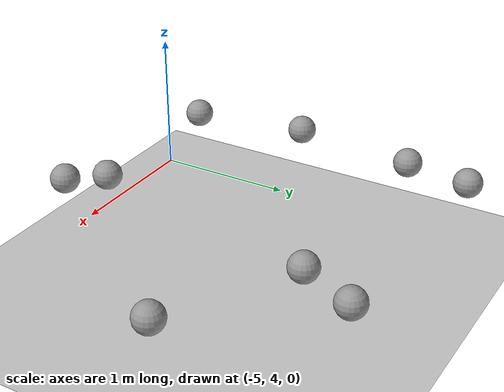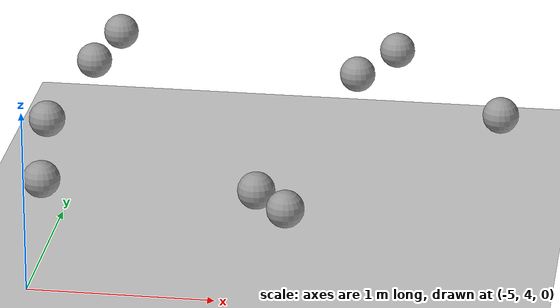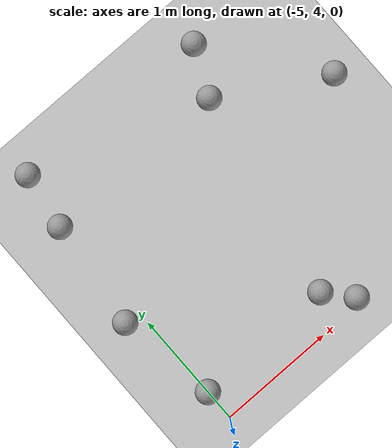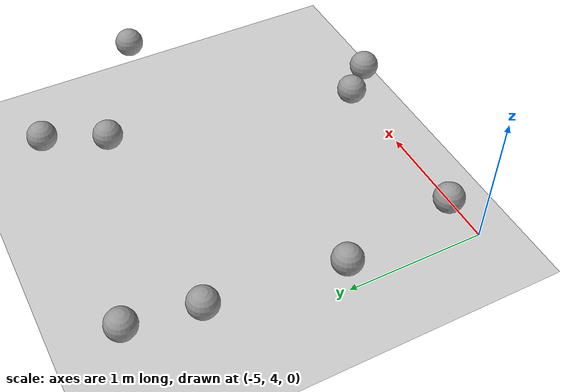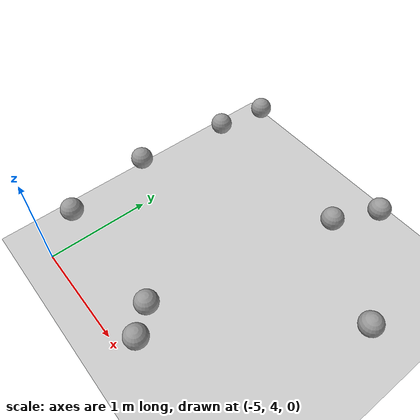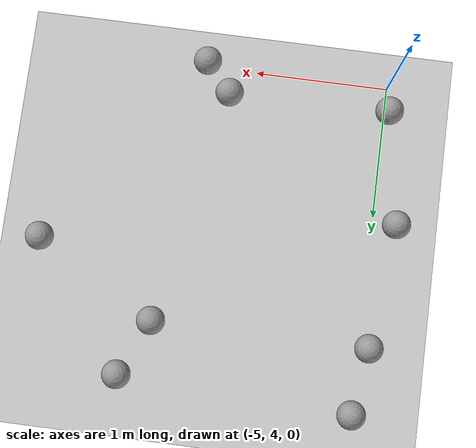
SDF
<sdf version="1.7">
 <world name="default">
  <model name="ground_plane">
   <static>1</static>
   <link name="link">
    <collision name="collision">
     <geometry><plane><normal>0 0 1</normal><size>100 100</size></plane></geometry>
     <surface>
      <contact><collide_bitmask>65535</collide_bitmask></contact>
      <friction><ode><mu>100</mu><mu2>50</mu2></ode></friction>
     </surface>
    </collision>
    <visual name="visual">
     <cast_shadows>0</cast_shadows>
     <geometry><plane><normal>0 0 1</normal><size>100 100</size></plane></geometry>
     <material>
      <script><uri>file://media/materials/scripts/gazebo.material</uri><name>Gazebo/Grey</name></script>
     </material>
    </visual>
   </link>
  </model>
  <model name="0.1unit_sphere">
   <link name="link">
    <inertial>
     <mass>1</mass>
     <inertia><ixx>0.1</ixx><ixy>0</ixy><ixz>0</ixz><iyy>0.1</iyy><iyz>0</iyz><izz>0.1</izz></inertia>
    </inertial>
    <visual name="visual">
     <geometry><sphere><radius>0.1</radius></sphere></geometry>
     <material>
      <script><name>Gazebo/Grey</name><uri>file://media/materials/scripts/gazebo.material</uri></script>
      <shader type="pixel"><normal_map>__default__</normal_map></shader>
      <ambient>0.3 0.3 0.3 1</ambient>
      <diffuse>0.7 0.7 0.7 1</diffuse>
      <specular>0.01 0.01 0.01 1</specular>
      <emissive>0 0 0 1</emissive>
     </material>
    </visual>
    <collision name="collision">
     <geometry><sphere><radius>0.1</radius></sphere></geometry>
     <surface>
      <friction>
       <ode><mu>1</mu><mu2>1</mu2><fdir1>0 0 0</fdir1><slip1>0</slip1><slip2>0</slip2></ode>
       <torsional>
        <coefficient>1</coefficient>
        <patch_radius>0</patch_radius>
        <surface_radius>0</surface_radius>
        <use_patch_radius>1</use_patch_radius>
        <ode><slip>0</slip></ode>
       </torsional>
      </friction>
      <bounce><restitution_coefficient>0</restitution_coefficient><threshold>1e+06</threshold></bounce>
      <contact>
       <collide_without_contact>0</collide_without_contact>
       <collide_without_contact_bitmask>1</collide_without_contact_bitmask>
       <collide_bitmask>1</collide_bitmask>
       <ode>
        <soft_cfm>0</soft_cfm>
        <soft_erp>0.2</soft_erp>
        <kp>1e+13</kp>
        <kd>1</kd>
        <max_vel>0.01</max_vel>
        <min_depth>0</min_depth>
       </ode>
       <bullet>
        <split_impulse>1</split_impulse>
        <split_impulse_penetration_threshold>-0.01</split_impulse_penetration_threshold>
        <soft_cfm>0</soft_cfm>
        <soft_erp>0.2</soft_erp>
        <kp>1e+13</kp>
        <kd>1</kd>
       </bullet>
      </contact>
     </surface>
    </collision>
   </link>
   <static>0</static>
   <pose>-5.10007 5.12136 0.5 0 -0 0</pose>
  </model>
  <model name="0.1unit_sphere_clone_0">
   <link name="link">
    <inertial>
     <mass>1</mass>
     <inertia><ixx>0.1</ixx><ixy>0</ixy><ixz>0</ixz><iyy>0.1</iyy><iyz>0</iyz><izz>0.1</izz></inertia>
    </inertial>
    <visual name="visual">
     <geometry><sphere><radius>0.1</radius></sphere></geometry>
     <material>
      <script><name>Gazebo/Grey</name><uri>file://media/materials/scripts/gazebo.material</uri></script>
      <shader type="pixel"><normal_map>__default__</normal_map></shader>
      <ambient>0.3 0.3 0.3 1</ambient>
      <diffuse>0.7 0.7 0.7 1</diffuse>
      <specular>0.01 0.01 0.01 1</specular>
      <emissive>0 0 0 1</emissive>
     </material>
    </visual>
    <collision name="collision">
     <geometry><sphere><radius>0.1</radius></sphere></geometry>
     <surface>
      <friction>
       <ode><mu>1</mu><mu2>1</mu2><fdir1>0 0 0</fdir1><slip1>0</slip1><slip2>0</slip2></ode>
       <torsional>
        <coefficient>1</coefficient>
        <patch_radius>0</patch_radius>
        <surface_radius>0</surface_radius>
        <use_patch_radius>1</use_patch_radius>
        <ode><slip>0</slip></ode>
       </torsional>
      </friction>
      <bounce><restitution_coefficient>0</restitution_coefficient><threshold>1e+06</threshold></bounce>
      <contact>
       <collide_without_contact>0</collide_without_contact>
       <collide_without_contact_bitmask>1</collide_without_contact_bitmask>
       <collide_bitmask>1</collide_bitmask>
       <ode>
        <soft_cfm>0</soft_cfm>
        <soft_erp>0.2</soft_erp>
        <kp>1e+13</kp>
        <kd>1</kd>
        <max_vel>0.01</max_vel>
        <min_depth>0</min_depth>
       </ode>
       <bullet>
        <split_impulse>1</split_impulse>
        <split_impulse_penetration_threshold>-0.01</split_impulse_penetration_threshold>
        <soft_cfm>0</soft_cfm>
        <soft_erp>0.2</soft_erp>
        <kp>1e+13</kp>
        <kd>1</kd>
       </bullet>
      </contact>
     </surface>
    </collision>
   </link>
   <static>0</static>
   <pose>-2.64217 5.51446 0.5 0 -0 0</pose>
  </model>
  <model name="0.1unit_sphere_clone_2">
   <link name="link">
    <inertial>
     <mass>1</mass>
     <inertia><ixx>0.1</ixx><ixy>0</ixy><ixz>0</ixz><iyy>0.1</iyy><iyz>0</iyz><izz>0.1</izz></inertia>
    </inertial>
    <visual name="visual">
     <geometry><sphere><radius>0.1</radius></sphere></geometry>
     <material>
      <script><name>Gazebo/Grey</name><uri>file://media/materials/scripts/gazebo.material</uri></script>
      <shader type="pixel"><normal_map>__default__</normal_map></shader>
      <ambient>0.3 0.3 0.3 1</ambient>
      <diffuse>0.7 0.7 0.7 1</diffuse>
      <specular>0.01 0.01 0.01 1</specular>
      <emissive>0 0 0 1</emissive>
     </material>
    </visual>
    <collision name="collision">
     <geometry><sphere><radius>0.1</radius></sphere></geometry>
     <surface>
      <friction>
       <ode><mu>1</mu><mu2>1</mu2><fdir1>0 0 0</fdir1><slip1>0</slip1><slip2>0</slip2></ode>
       <torsional>
        <coefficient>1</coefficient>
        <patch_radius>0</patch_radius>
        <surface_radius>0</surface_radius>
        <use_patch_radius>1</use_patch_radius>
        <ode><slip>0</slip></ode>
       </torsional>
      </friction>
      <bounce><restitution_coefficient>0</restitution_coefficient><threshold>1e+06</threshold></bounce>
      <contact>
       <collide_without_contact>0</collide_without_contact>
       <collide_without_contact_bitmask>1</collide_without_contact_bitmask>
       <collide_bitmask>1</collide_bitmask>
       <ode>
        <soft_cfm>0</soft_cfm>
        <soft_erp>0.2</soft_erp>
        <kp>1e+13</kp>
        <kd>1</kd>
        <max_vel>0.01</max_vel>
        <min_depth>0</min_depth>
       </ode>
       <bullet>
        <split_impulse>1</split_impulse>
        <split_impulse_penetration_threshold>-0.01</split_impulse_penetration_threshold>
        <soft_cfm>0</soft_cfm>
        <soft_erp>0.2</soft_erp>
        <kp>1e+13</kp>
        <kd>1</kd>
       </bullet>
      </contact>
     </surface>
    </collision>
   </link>
   <static>0</static>
   <pose>-5 6 0.5 0 -0 0</pose>
  </model>
  <model name="0.1unit_sphere_clone_19">
   <link name="link">
    <inertial>
     <mass>1</mass>
     <inertia><ixx>0.1</ixx><ixy>0</ixy><ixz>0</ixz><iyy>0.1</iyy><iyz>0</iyz><izz>0.1</izz></inertia>
    </inertial>
    <visual name="visual">
     <geometry><sphere><radius>0.1</radius></sphere></geometry>
     <material>
      <script><name>Gazebo/Grey</name><uri>file://media/materials/scripts/gazebo.material</uri></script>
      <shader type="pixel"><normal_map>__default__</normal_map></shader>
      <ambient>0.3 0.3 0.3 1</ambient>
      <diffuse>0.7 0.7 0.7 1</diffuse>
      <specular>0.01 0.01 0.01 1</specular>
      <emissive>0 0 0 1</emissive>
     </material>
    </visual>
    <collision name="collision">
     <geometry><sphere><radius>0.1</radius></sphere></geometry>
     <surface>
      <friction>
       <ode><mu>1</mu><mu2>1</mu2><fdir1>0 0 0</fdir1><slip1>0</slip1><slip2>0</slip2></ode>
       <torsional>
        <coefficient>1</coefficient>
        <patch_radius>0</patch_radius>
        <surface_radius>0</surface_radius>
        <use_patch_radius>1</use_patch_radius>
        <ode><slip>0</slip></ode>
       </torsional>
      </friction>
      <bounce><restitution_coefficient>0</restitution_coefficient><threshold>1e+06</threshold></bounce>
      <contact>
       <collide_without_contact>0</collide_without_contact>
       <collide_without_contact_bitmask>1</collide_without_contact_bitmask>
       <collide_bitmask>1</collide_bitmask>
       <ode>
        <soft_cfm>0</soft_cfm>
        <soft_erp>0.2</soft_erp>
        <kp>1e+13</kp>
        <kd>1</kd>
        <max_vel>0.01</max_vel>
        <min_depth>0</min_depth>
       </ode>
       <bullet>
        <split_impulse>1</split_impulse>
        <split_impulse_penetration_threshold>-0.01</split_impulse_penetration_threshold>
        <soft_cfm>0</soft_cfm>
        <soft_erp>0.2</soft_erp>
        <kp>1e+13</kp>
        <kd>1</kd>
       </bullet>
      </contact>
     </surface>
    </collision>
   </link>
   <static>0</static>
   <pose>-4.92793 6.46164 0.5 0 -0 0</pose>
  </model>
  <model name="0.1unit_sphere_clone_25">
   <link name="link">
    <inertial>
     <mass>1</mass>
     <inertia><ixx>0.1</ixx><ixy>0</ixy><ixz>0</ixz><iyy>0.1</iyy><iyz>0</iyz><izz>0.1</izz></inertia>
    </inertial>
    <visual name="visual">
     <geometry><sphere><radius>0.1</radius></sphere></geometry>
     <material>
      <script><name>Gazebo/Grey</name><uri>file://media/materials/scripts/gazebo.material</uri></script>
      <shader type="pixel"><normal_map>__default__</normal_map></shader>
      <ambient>0.3 0.3 0.3 1</ambient>
      <diffuse>0.7 0.7 0.7 1</diffuse>
      <specular>0.01 0.01 0.01 1</specular>
      <emissive>0 0 0 1</emissive>
     </material>
    </visual>
    <collision name="collision">
     <geometry><sphere><radius>0.1</radius></sphere></geometry>
     <surface>
      <friction>
       <ode><mu>1</mu><mu2>1</mu2><fdir1>0 0 0</fdir1><slip1>0</slip1><slip2>0</slip2></ode>
       <torsional>
        <coefficient>1</coefficient>
        <patch_radius>0</patch_radius>
        <surface_radius>0</surface_radius>
        <use_patch_radius>1</use_patch_radius>
        <ode><slip>0</slip></ode>
       </torsional>
      </friction>
      <bounce><restitution_coefficient>0</restitution_coefficient><threshold>1e+06</threshold></bounce>
      <contact>
       <collide_without_contact>0</collide_without_contact>
       <collide_without_contact_bitmask>1</collide_without_contact_bitmask>
       <collide_bitmask>1</collide_bitmask>
       <ode>
        <soft_cfm>0</soft_cfm>
        <soft_erp>0.2</soft_erp>
        <kp>1e+13</kp>
        <kd>1</kd>
        <max_vel>0.01</max_vel>
        <min_depth>0</min_depth>
       </ode>
       <bullet>
        <split_impulse>1</split_impulse>
        <split_impulse_penetration_threshold>-0.01</split_impulse_penetration_threshold>
        <soft_cfm>0</soft_cfm>
        <soft_erp>0.2</soft_erp>
        <kp>1e+13</kp>
        <kd>1</kd>
       </bullet>
      </contact>
     </surface>
    </collision>
   </link>
   <static>0</static>
   <pose>-3.8257 4.32296 0.5 0 -0 0</pose>
  </model>
  <model name="0.1unit_sphere_clone_34">
   <link name="link">
    <inertial>
     <mass>1</mass>
     <inertia><ixx>0.1</ixx><ixy>0</ixy><ixz>0</ixz><iyy>0.1</iyy><iyz>0</iyz><izz>0.1</izz></inertia>
    </inertial>
    <visual name="visual">
     <geometry><sphere><radius>0.1</radius></sphere></geometry>
     <material>
      <script><name>Gazebo/Grey</name><uri>file://media/materials/scripts/gazebo.material</uri></script>
      <shader type="pixel"><normal_map>__default__</normal_map></shader>
      <ambient>0.3 0.3 0.3 1</ambient>
      <diffuse>0.7 0.7 0.7 1</diffuse>
      <specular>0.01 0.01 0.01 1</specular>
      <emissive>0 0 0 1</emissive>
     </material>
    </visual>
    <collision name="collision">
     <geometry><sphere><radius>0.1</radius></sphere></geometry>
     <surface>
      <friction>
       <ode><mu>1</mu><mu2>1</mu2><fdir1>0 0 0</fdir1><slip1>0</slip1><slip2>0</slip2></ode>
       <torsional>
        <coefficient>1</coefficient>
        <patch_radius>0</patch_radius>
        <surface_radius>0</surface_radius>
        <use_patch_radius>1</use_patch_radius>
        <ode><slip>0</slip></ode>
       </torsional>
      </friction>
      <bounce><restitution_coefficient>0</restitution_coefficient><threshold>1e+06</threshold></bounce>
      <contact>
       <collide_without_contact>0</collide_without_contact>
       <collide_without_contact_bitmask>1</collide_without_contact_bitmask>
       <collide_bitmask>1</collide_bitmask>
       <ode>
        <soft_cfm>0</soft_cfm>
        <soft_erp>0.2</soft_erp>
        <kp>1e+13</kp>
        <kd>1</kd>
        <max_vel>0.01</max_vel>
        <min_depth>0</min_depth>
       </ode>
       <bullet>
        <split_impulse>1</split_impulse>
        <split_impulse_penetration_threshold>-0.01</split_impulse_penetration_threshold>
        <soft_cfm>0</soft_cfm>
        <soft_erp>0.2</soft_erp>
        <kp>1e+13</kp>
        <kd>1</kd>
       </bullet>
      </contact>
     </surface>
    </collision>
   </link>
   <static>0</static>
   <pose>-3.4913 6 0.5 0 -0 0</pose>
  </model>
  <model name="0.1unit_sphere_clone_35">
   <link name="link">
    <inertial>
     <mass>1</mass>
     <inertia><ixx>0.1</ixx><ixy>0</ixy><ixz>0</ixz><iyy>0.1</iyy><iyz>0</iyz><izz>0.1</izz></inertia>
    </inertial>
    <visual name="visual">
     <geometry><sphere><radius>0.1</radius></sphere></geometry>
     <material>
      <script><name>Gazebo/Grey</name><uri>file://media/materials/scripts/gazebo.material</uri></script>
      <shader type="pixel"><normal_map>__default__</normal_map></shader>
      <ambient>0.3 0.3 0.3 1</ambient>
      <diffuse>0.7 0.7 0.7 1</diffuse>
      <specular>0.01 0.01 0.01 1</specular>
      <emissive>0 0 0 1</emissive>
     </material>
    </visual>
    <collision name="collision">
     <geometry><sphere><radius>0.1</radius></sphere></geometry>
     <surface>
      <friction>
       <ode><mu>1</mu><mu2>1</mu2><fdir1>0 0 0</fdir1><slip1>0</slip1><slip2>0</slip2></ode>
       <torsional>
        <coefficient>1</coefficient>
        <patch_radius>0</patch_radius>
        <surface_radius>0</surface_radius>
        <use_patch_radius>1</use_patch_radius>
        <ode><slip>0</slip></ode>
       </torsional>
      </friction>
      <bounce><restitution_coefficient>0</restitution_coefficient><threshold>1e+06</threshold></bounce>
      <contact>
       <collide_without_contact>0</collide_without_contact>
       <collide_without_contact_bitmask>1</collide_without_contact_bitmask>
       <collide_bitmask>1</collide_bitmask>
       <ode>
        <soft_cfm>0</soft_cfm>
        <soft_erp>0.2</soft_erp>
        <kp>1e+13</kp>
        <kd>1</kd>
        <max_vel>0.01</max_vel>
        <min_depth>0</min_depth>
       </ode>
       <bullet>
        <split_impulse>1</split_impulse>
        <split_impulse_penetration_threshold>-0.01</split_impulse_penetration_threshold>
        <soft_cfm>0</soft_cfm>
        <soft_erp>0.2</soft_erp>
        <kp>1e+13</kp>
        <kd>1</kd>
       </bullet>
      </contact>
     </surface>
    </collision>
   </link>
   <static>0</static>
   <pose>-3.30785 6.39267 0.5 0 -0 0</pose>
  </model>
  <model name="0.1unit_sphere_clone_36">
   <link name="link">
    <inertial>
     <mass>1</mass>
     <inertia><ixx>0.1</ixx><ixy>0</ixy><ixz>0</ixz><iyy>0.1</iyy><iyz>0</iyz><izz>0.1</izz></inertia>
    </inertial>
    <visual name="visual">
     <geometry><sphere><radius>0.1</radius></sphere></geometry>
     <material>
      <script><name>Gazebo/Grey</name><uri>file://media/materials/scripts/gazebo.material</uri></script>
      <shader type="pixel"><normal_map>__default__</normal_map></shader>
      <ambient>0.3 0.3 0.3 1</ambient>
      <diffuse>0.7 0.7 0.7 1</diffuse>
      <specular>0.01 0.01 0.01 1</specular>
      <emissive>0 0 0 1</emissive>
     </material>
    </visual>
    <collision name="collision">
     <geometry><sphere><radius>0.1</radius></sphere></geometry>
     <surface>
      <friction>
       <ode><mu>1</mu><mu2>1</mu2><fdir1>0 0 0</fdir1><slip1>0</slip1><slip2>0</slip2></ode>
       <torsional>
        <coefficient>1</coefficient>
        <patch_radius>0</patch_radius>
        <surface_radius>0</surface_radius>
        <use_patch_radius>1</use_patch_radius>
        <ode><slip>0</slip></ode>
       </torsional>
      </friction>
      <bounce><restitution_coefficient>0</restitution_coefficient><threshold>1e+06</threshold></bounce>
      <contact>
       <collide_without_contact>0</collide_without_contact>
       <collide_without_contact_bitmask>1</collide_without_contact_bitmask>
       <collide_bitmask>1</collide_bitmask>
       <ode>
        <soft_cfm>0</soft_cfm>
        <soft_erp>0.2</soft_erp>
        <kp>1e+13</kp>
        <kd>1</kd>
        <max_vel>0.01</max_vel>
        <min_depth>0</min_depth>
       </ode>
       <bullet>
        <split_impulse>1</split_impulse>
        <split_impulse_penetration_threshold>-0.01</split_impulse_penetration_threshold>
        <soft_cfm>0</soft_cfm>
        <soft_erp>0.2</soft_erp>
        <kp>1e+13</kp>
        <kd>1</kd>
       </bullet>
      </contact>
     </surface>
    </collision>
   </link>
   <static>0</static>
   <pose>-4.96927 4.31248 0.5 0 -0 0</pose>
  </model>
  <model name="0.1unit_sphere_clone_39">
   <link name="link">
    <inertial>
     <mass>1</mass>
     <inertia><ixx>0.1</ixx><ixy>0</ixy><ixz>0</ixz><iyy>0.1</iyy><iyz>0</iyz><izz>0.1</izz></inertia>
    </inertial>
    <visual name="visual">
     <geometry><sphere><radius>0.1</radius></sphere></geometry>
     <material>
      <script><name>Gazebo/Grey</name><uri>file://media/materials/scripts/gazebo.material</uri></script>
      <shader type="pixel"><normal_map>__default__</normal_map></shader>
      <ambient>0.3 0.3 0.3 1</ambient>
      <diffuse>0.7 0.7 0.7 1</diffuse>
      <specular>0.01 0.01 0.01 1</specular>
      <emissive>0 0 0 1</emissive>
     </material>
    </visual>
    <collision name="collision">
     <geometry><sphere><radius>0.1</radius></sphere></geometry>
     <surface>
      <friction>
       <ode><mu>1</mu><mu2>1</mu2><fdir1>0 0 0</fdir1><slip1>0</slip1><slip2>0</slip2></ode>
       <torsional>
        <coefficient>1</coefficient>
        <patch_radius>0</patch_radius>
        <surface_radius>0</surface_radius>
        <use_patch_radius>1</use_patch_radius>
        <ode><slip>0</slip></ode>
       </torsional>
      </friction>
      <bounce><restitution_coefficient>0</restitution_coefficient><threshold>1e+06</threshold></bounce>
      <contact>
       <collide_without_contact>0</collide_without_contact>
       <collide_without_contact_bitmask>1</collide_without_contact_bitmask>
       <collide_bitmask>1</collide_bitmask>
       <ode>
        <soft_cfm>0</soft_cfm>
        <soft_erp>0.2</soft_erp>
        <kp>1e+13</kp>
        <kd>1</kd>
        <max_vel>0.01</max_vel>
        <min_depth>0</min_depth>
       </ode>
       <bullet>
        <split_impulse>1</split_impulse>
        <split_impulse_penetration_threshold>-0.01</split_impulse_penetration_threshold>
        <soft_cfm>0</soft_cfm>
        <soft_erp>0.2</soft_erp>
        <kp>1e+13</kp>
        <kd>1</kd>
       </bullet>
      </contact>
     </surface>
    </collision>
   </link>
   <static>0</static>
   <pose>-3.64271 4.11071 0.5 0 -0 0</pose>
  </model>
 </world>
</sdf>
